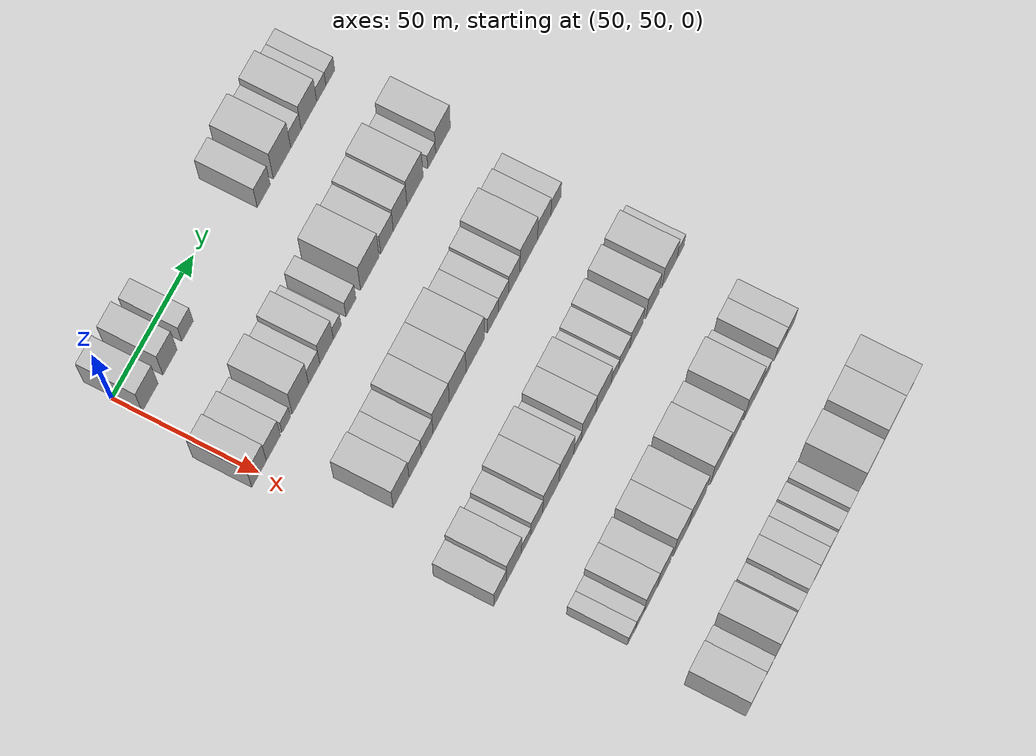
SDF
<sdf version="1.6">
 <world name="default">
  <model name="building_78">
   <static>1</static>
   <pose>50.0000 55.3659 0 0.000000 0.000000 0.000000</pose>
   <link name="link">
    <pose>0 0 10.50 0 0 0</pose>
    <collision name="collision"><geometry><box><size>20.0000 9.7498 21.0000</size></box></geometry></collision>
    <visual name="visual">
     <cast_shadows>0</cast_shadows>
     <geometry><box><size>20.0000 9.7498 21.0000</size></box></geometry>
     <material>
      <script>
       <uri>model://HANNAS_wall/materials/scripts</uri>
       <uri>model://HANNAS_wall/materials/textures</uri>
       <name>vrc/HANNAS_wall</name>
      </script>
     </material>
    </visual>
   </link>
  </model>
  <model name="building_79">
   <static>1</static>
   <pose>50.0000 67.6013 0 0.000000 0.000000 0.000000</pose>
   <link name="link">
    <pose>0 0 10.50 0 0 0</pose>
    <collision name="collision"><geometry><box><size>20.0000 8.7211 21.0000</size></box></geometry></collision>
    <visual name="visual">
     <cast_shadows>0</cast_shadows>
     <geometry><box><size>20.0000 8.7211 21.0000</size></box></geometry>
     <material>
      <script>
       <uri>model://HANNAS_wall/materials/scripts</uri>
       <uri>model://HANNAS_wall/materials/textures</uri>
       <name>vrc/HANNAS_wall</name>
      </script>
     </material>
    </visual>
   </link>
  </model>
  <model name="building_80">
   <static>1</static>
   <pose>50.0000 78.4694 0 0.000000 0.000000 0.000000</pose>
   <link name="link">
    <pose>0 0 7.50 0 0 0</pose>
    <collision name="collision"><geometry><box><size>20.0000 7.0151 15.0000</size></box></geometry></collision>
    <visual name="visual">
     <cast_shadows>0</cast_shadows>
     <geometry><box><size>20.0000 7.0151 15.0000</size></box></geometry>
     <material>
      <script>
       <uri>model://HANNAS_wall/materials/scripts</uri>
       <uri>model://HANNAS_wall/materials/textures</uri>
       <name>vrc/HANNAS_wall</name>
      </script>
     </material>
    </visual>
   </link>
  </model>
  <model name="building_81">
   <static>1</static>
   <pose>50.0000 126.3363 0 0.000000 0.000000 0.000000</pose>
   <link name="link">
    <pose>0 0 9.00 0 0 0</pose>
    <collision name="collision"><geometry><box><size>20.0000 8.2395 18.0000</size></box></geometry></collision>
    <visual name="visual">
     <cast_shadows>0</cast_shadows>
     <geometry><box><size>20.0000 8.2395 18.0000</size></box></geometry>
     <material>
      <script>
       <uri>model://HANNAS_wall/materials/scripts</uri>
       <uri>model://HANNAS_wall/materials/textures</uri>
       <name>vrc/HANNAS_wall</name>
      </script>
     </material>
    </visual>
   </link>
  </model>
  <model name="building_82">
   <static>1</static>
   <pose>50.0000 138.0064 0 0.000000 0.000000 0.000000</pose>
   <link name="link">
    <pose>0 0 12.00 0 0 0</pose>
    <collision name="collision"><geometry><box><size>20.0000 11.1007 24.0000</size></box></geometry></collision>
    <visual name="visual">
     <cast_shadows>0</cast_shadows>
     <geometry><box><size>20.0000 11.1007 24.0000</size></box></geometry>
     <material>
      <script>
       <uri>model://HANNAS_wall/materials/scripts</uri>
       <uri>model://HANNAS_wall/materials/textures</uri>
       <name>vrc/HANNAS_wall</name>
      </script>
     </material>
    </visual>
   </link>
  </model>
  <model name="building_83">
   <static>1</static>
   <pose>50.0000 146.9080 0 0.000000 0.000000 0.000000</pose>
   <link name="link">
    <pose>0 0 7.50 0 0 0</pose>
    <collision name="collision"><geometry><box><size>20.0000 6.7026 15.0000</size></box></geometry></collision>
    <visual name="visual">
     <cast_shadows>0</cast_shadows>
     <geometry><box><size>20.0000 6.7026 15.0000</size></box></geometry>
     <material>
      <script>
       <uri>model://HANNAS_wall/materials/scripts</uri>
       <uri>model://HANNAS_wall/materials/textures</uri>
       <name>vrc/HANNAS_wall</name>
      </script>
     </material>
    </visual>
   </link>
  </model>
  <model name="building_84">
   <static>1</static>
   <pose>50.0000 155.2489 0 0.000000 0.000000 0.000000</pose>
   <link name="link">
    <pose>0 0 10.50 0 0 0</pose>
    <collision name="collision"><geometry><box><size>20.0000 9.9791 21.0000</size></box></geometry></collision>
    <visual name="visual">
     <cast_shadows>0</cast_shadows>
     <geometry><box><size>20.0000 9.9791 21.0000</size></box></geometry>
     <material>
      <script>
       <uri>model://HANNAS_wall/materials/scripts</uri>
       <uri>model://HANNAS_wall/materials/textures</uri>
       <name>vrc/HANNAS_wall</name>
      </script>
     </material>
    </visual>
   </link>
  </model>
  <model name="building_85">
   <static>1</static>
   <pose>50.0000 163.1844 0 0.000000 0.000000 0.000000</pose>
   <link name="link">
    <pose>0 0 6.00 0 0 0</pose>
    <collision name="collision"><geometry><box><size>20.0000 5.8918 12.0000</size></box></geometry></collision>
    <visual name="visual">
     <cast_shadows>0</cast_shadows>
     <geometry><box><size>20.0000 5.8918 12.0000</size></box></geometry>
     <material>
      <script>
       <uri>model://HANNAS_wall/materials/scripts</uri>
       <uri>model://HANNAS_wall/materials/textures</uri>
       <name>vrc/HANNAS_wall</name>
      </script>
     </material>
    </visual>
   </link>
  </model>
  <model name="building_86">
   <static>1</static>
   <pose>50.0000 168.9830 0 0.000000 0.000000 0.000000</pose>
   <link name="link">
    <pose>0 0 6.00 0 0 0</pose>
    <collision name="collision"><geometry><box><size>20.0000 5.7054 12.0000</size></box></geometry></collision>
    <visual name="visual">
     <cast_shadows>0</cast_shadows>
     <geometry><box><size>20.0000 5.7054 12.0000</size></box></geometry>
     <material>
      <script>
       <uri>model://HANNAS_wall/materials/scripts</uri>
       <uri>model://HANNAS_wall/materials/textures</uri>
       <name>vrc/HANNAS_wall</name>
      </script>
     </material>
    </visual>
   </link>
  </model>
  <model name="building_205">
   <static>1</static>
   <pose>90.0000 49.7873 0 0.000000 0.000000 0.000000</pose>
   <link name="link">
    <pose>0 0 10.50 0 0 0</pose>
    <collision name="collision"><geometry><box><size>20.0000 9.0971 21.0000</size></box></geometry></collision>
    <visual name="visual">
     <cast_shadows>0</cast_shadows>
     <geometry><box><size>20.0000 9.0971 21.0000</size></box></geometry>
     <material>
      <script>
       <uri>model://HANNAS_wall/materials/scripts</uri>
       <uri>model://HANNAS_wall/materials/textures</uri>
       <name>vrc/HANNAS_wall</name>
      </script>
     </material>
    </visual>
   </link>
  </model>
  <model name="building_206">
   <static>1</static>
   <pose>90.0000 58.6942 0 0.000000 0.000000 0.000000</pose>
   <link name="link">
    <pose>0 0 9.00 0 0 0</pose>
    <collision name="collision"><geometry><box><size>20.0000 8.7167 18.0000</size></box></geometry></collision>
    <visual name="visual">
     <cast_shadows>0</cast_shadows>
     <geometry><box><size>20.0000 8.7167 18.0000</size></box></geometry>
     <material>
      <script>
       <uri>model://HANNAS_wall/materials/scripts</uri>
       <uri>model://HANNAS_wall/materials/textures</uri>
       <name>vrc/HANNAS_wall</name>
      </script>
     </material>
    </visual>
   </link>
  </model>
  <model name="building_207">
   <static>1</static>
   <pose>90.0000 66.7447 0 0.000000 0.000000 0.000000</pose>
   <link name="link">
    <pose>0 0 6.00 0 0 0</pose>
    <collision name="collision"><geometry><box><size>20.0000 5.3843 12.0000</size></box></geometry></collision>
    <visual name="visual">
     <cast_shadows>0</cast_shadows>
     <geometry><box><size>20.0000 5.3843 12.0000</size></box></geometry>
     <material>
      <script>
       <uri>model://HANNAS_wall/materials/scripts</uri>
       <uri>model://HANNAS_wall/materials/textures</uri>
       <name>vrc/HANNAS_wall</name>
      </script>
     </material>
    </visual>
   </link>
  </model>
  <model name="building_208">
   <static>1</static>
   <pose>90.0000 75.6059 0 0.000000 0.000000 0.000000</pose>
   <link name="link">
    <pose>0 0 12.00 0 0 0</pose>
    <collision name="collision"><geometry><box><size>20.0000 10.3382 24.0000</size></box></geometry></collision>
    <visual name="visual">
     <cast_shadows>0</cast_shadows>
     <geometry><box><size>20.0000 10.3382 24.0000</size></box></geometry>
     <material>
      <script>
       <uri>model://HANNAS_wall/materials/scripts</uri>
       <uri>model://HANNAS_wall/materials/textures</uri>
       <name>vrc/HANNAS_wall</name>
      </script>
     </material>
    </visual>
   </link>
  </model>
  <model name="building_209">
   <static>1</static>
   <pose>90.0000 84.2939 0 0.000000 0.000000 0.000000</pose>
   <link name="link">
    <pose>0 0 7.50 0 0 0</pose>
    <collision name="collision"><geometry><box><size>20.0000 7.0378 15.0000</size></box></geometry></collision>
    <visual name="visual">
     <cast_shadows>0</cast_shadows>
     <geometry><box><size>20.0000 7.0378 15.0000</size></box></geometry>
     <material>
      <script>
       <uri>model://HANNAS_wall/materials/scripts</uri>
       <uri>model://HANNAS_wall/materials/textures</uri>
       <name>vrc/HANNAS_wall</name>
      </script>
     </material>
    </visual>
   </link>
  </model>
  <model name="building_210">
   <static>1</static>
   <pose>90.0000 92.0998 0 0.000000 0.000000 0.000000</pose>
   <link name="link">
    <pose>0 0 10.50 0 0 0</pose>
    <collision name="collision"><geometry><box><size>20.0000 8.5739 21.0000</size></box></geometry></collision>
    <visual name="visual">
     <cast_shadows>0</cast_shadows>
     <geometry><box><size>20.0000 8.5739 21.0000</size></box></geometry>
     <material>
      <script>
       <uri>model://HANNAS_wall/materials/scripts</uri>
       <uri>model://HANNAS_wall/materials/textures</uri>
       <name>vrc/HANNAS_wall</name>
      </script>
     </material>
    </visual>
   </link>
  </model>
  <model name="building_211">
   <static>1</static>
   <pose>90.0000 98.8575 0 0.000000 0.000000 0.000000</pose>
   <link name="link">
    <pose>0 0 6.00 0 0 0</pose>
    <collision name="collision"><geometry><box><size>20.0000 4.9415 12.0000</size></box></geometry></collision>
    <visual name="visual">
     <cast_shadows>0</cast_shadows>
     <geometry><box><size>20.0000 4.9415 12.0000</size></box></geometry>
     <material>
      <script>
       <uri>model://HANNAS_wall/materials/scripts</uri>
       <uri>model://HANNAS_wall/materials/textures</uri>
       <name>vrc/HANNAS_wall</name>
      </script>
     </material>
    </visual>
   </link>
  </model>
  <model name="building_212">
   <static>1</static>
   <pose>90.0000 107.4986 0 0.000000 0.000000 0.000000</pose>
   <link name="link">
    <pose>0 0 7.50 0 0 0</pose>
    <collision name="collision"><geometry><box><size>20.0000 6.3408 15.0000</size></box></geometry></collision>
    <visual name="visual">
     <cast_shadows>0</cast_shadows>
     <geometry><box><size>20.0000 6.3408 15.0000</size></box></geometry>
     <material>
      <script>
       <uri>model://HANNAS_wall/materials/scripts</uri>
       <uri>model://HANNAS_wall/materials/textures</uri>
       <name>vrc/HANNAS_wall</name>
      </script>
     </material>
    </visual>
   </link>
  </model>
  <model name="building_213">
   <static>1</static>
   <pose>90.0000 119.5942 0 0.000000 0.000000 0.000000</pose>
   <link name="link">
    <pose>0 0 12.00 0 0 0</pose>
    <collision name="collision"><geometry><box><size>20.0000 11.8504 24.0000</size></box></geometry></collision>
    <visual name="visual">
     <cast_shadows>0</cast_shadows>
     <geometry><box><size>20.0000 11.8504 24.0000</size></box></geometry>
     <material>
      <script>
       <uri>model://HANNAS_wall/materials/scripts</uri>
       <uri>model://HANNAS_wall/materials/textures</uri>
       <name>vrc/HANNAS_wall</name>
      </script>
     </material>
    </visual>
   </link>
  </model>
  <model name="building_214">
   <static>1</static>
   <pose>90.0000 130.5857 0 0.000000 0.000000 0.000000</pose>
   <link name="link">
    <pose>0 0 9.00 0 0 0</pose>
    <collision name="collision"><geometry><box><size>20.0000 8.1325 18.0000</size></box></geometry></collision>
    <visual name="visual">
     <cast_shadows>0</cast_shadows>
     <geometry><box><size>20.0000 8.1325 18.0000</size></box></geometry>
     <material>
      <script>
       <uri>model://HANNAS_wall/materials/scripts</uri>
       <uri>model://HANNAS_wall/materials/textures</uri>
       <name>vrc/HANNAS_wall</name>
      </script>
     </material>
    </visual>
   </link>
  </model>
  <model name="building_215">
   <static>1</static>
   <pose>90.0000 139.0919 0 0.000000 0.000000 0.000000</pose>
   <link name="link">
    <pose>0 0 10.50 0 0 0</pose>
    <collision name="collision"><geometry><box><size>20.0000 8.8800 21.0000</size></box></geometry></collision>
    <visual name="visual">
     <cast_shadows>0</cast_shadows>
     <geometry><box><size>20.0000 8.8800 21.0000</size></box></geometry>
     <material>
      <script>
       <uri>model://HANNAS_wall/materials/scripts</uri>
       <uri>model://HANNAS_wall/materials/textures</uri>
       <name>vrc/HANNAS_wall</name>
      </script>
     </material>
    </visual>
   </link>
  </model>
  <model name="building_216">
   <static>1</static>
   <pose>90.0000 148.7442 0 0.000000 0.000000 0.000000</pose>
   <link name="link">
    <pose>0 0 12.00 0 0 0</pose>
    <collision name="collision"><geometry><box><size>20.0000 10.4246 24.0000</size></box></geometry></collision>
    <visual name="visual">
     <cast_shadows>0</cast_shadows>
     <geometry><box><size>20.0000 10.4246 24.0000</size></box></geometry>
     <material>
      <script>
       <uri>model://HANNAS_wall/materials/scripts</uri>
       <uri>model://HANNAS_wall/materials/textures</uri>
       <name>vrc/HANNAS_wall</name>
      </script>
     </material>
    </visual>
   </link>
  </model>
  <model name="building_217">
   <static>1</static>
   <pose>90.0000 159.5281 0 0.000000 0.000000 0.000000</pose>
   <link name="link">
    <pose>0 0 6.00 0 0 0</pose>
    <collision name="collision"><geometry><box><size>20.0000 5.1431 12.0000</size></box></geometry></collision>
    <visual name="visual">
     <cast_shadows>0</cast_shadows>
     <geometry><box><size>20.0000 5.1431 12.0000</size></box></geometry>
     <material>
      <script>
       <uri>model://HANNAS_wall/materials/scripts</uri>
       <uri>model://HANNAS_wall/materials/textures</uri>
       <name>vrc/HANNAS_wall</name>
      </script>
     </material>
    </visual>
   </link>
  </model>
  <model name="building_218">
   <static>1</static>
   <pose>90.0000 166.9078 0 0.000000 0.000000 0.000000</pose>
   <link name="link">
    <pose>0 0 10.50 0 0 0</pose>
    <collision name="collision"><geometry><box><size>20.0000 9.6163 21.0000</size></box></geometry></collision>
    <visual name="visual">
     <cast_shadows>0</cast_shadows>
     <geometry><box><size>20.0000 9.6163 21.0000</size></box></geometry>
     <material>
      <script>
       <uri>model://HANNAS_wall/materials/scripts</uri>
       <uri>model://HANNAS_wall/materials/textures</uri>
       <name>vrc/HANNAS_wall</name>
      </script>
     </material>
    </visual>
   </link>
  </model>
  <model name="building_337">
   <static>1</static>
   <pose>130.0000 64.1226 0 0.000000 0.000000 0.000000</pose>
   <link name="link">
    <pose>0 0 10.50 0 0 0</pose>
    <collision name="collision"><geometry><box><size>20.0000 10.1114 21.0000</size></box></geometry></collision>
    <visual name="visual">
     <cast_shadows>0</cast_shadows>
     <geometry><box><size>20.0000 10.1114 21.0000</size></box></geometry>
     <material>
      <script>
       <uri>model://HANNAS_wall/materials/scripts</uri>
       <uri>model://HANNAS_wall/materials/textures</uri>
       <name>vrc/HANNAS_wall</name>
      </script>
     </material>
    </visual>
   </link>
  </model>
  <model name="building_338">
   <static>1</static>
   <pose>130.0000 73.0999 0 0.000000 0.000000 0.000000</pose>
   <link name="link">
    <pose>0 0 9.00 0 0 0</pose>
    <collision name="collision"><geometry><box><size>20.0000 7.8432 18.0000</size></box></geometry></collision>
    <visual name="visual">
     <cast_shadows>0</cast_shadows>
     <geometry><box><size>20.0000 7.8432 18.0000</size></box></geometry>
     <material>
      <script>
       <uri>model://HANNAS_wall/materials/scripts</uri>
       <uri>model://HANNAS_wall/materials/textures</uri>
       <name>vrc/HANNAS_wall</name>
      </script>
     </material>
    </visual>
   </link>
  </model>
  <model name="building_339">
   <static>1</static>
   <pose>130.0000 80.7239 0 0.000000 0.000000 0.000000</pose>
   <link name="link">
    <pose>0 0 9.00 0 0 0</pose>
    <collision name="collision"><geometry><box><size>20.0000 7.4048 18.0000</size></box></geometry></collision>
    <visual name="visual">
     <cast_shadows>0</cast_shadows>
     <geometry><box><size>20.0000 7.4048 18.0000</size></box></geometry>
     <material>
      <script>
       <uri>model://HANNAS_wall/materials/scripts</uri>
       <uri>model://HANNAS_wall/materials/textures</uri>
       <name>vrc/HANNAS_wall</name>
      </script>
     </material>
    </visual>
   </link>
  </model>
  <model name="building_340">
   <static>1</static>
   <pose>130.0000 89.6452 0 0.000000 0.000000 0.000000</pose>
   <link name="link">
    <pose>0 0 12.00 0 0 0</pose>
    <collision name="collision"><geometry><box><size>20.0000 10.4376 24.0000</size></box></geometry></collision>
    <visual name="visual">
     <cast_shadows>0</cast_shadows>
     <geometry><box><size>20.0000 10.4376 24.0000</size></box></geometry>
     <material>
      <script>
       <uri>model://HANNAS_wall/materials/scripts</uri>
       <uri>model://HANNAS_wall/materials/textures</uri>
       <name>vrc/HANNAS_wall</name>
      </script>
     </material>
    </visual>
   </link>
  </model>
  <model name="building_341">
   <static>1</static>
   <pose>130.0000 100.2079 0 0.000000 0.000000 0.000000</pose>
   <link name="link">
    <pose>0 0 12.00 0 0 0</pose>
    <collision name="collision"><geometry><box><size>20.0000 10.6879 24.0000</size></box></geometry></collision>
    <visual name="visual">
     <cast_shadows>0</cast_shadows>
     <geometry><box><size>20.0000 10.6879 24.0000</size></box></geometry>
     <material>
      <script>
       <uri>model://HANNAS_wall/materials/scripts</uri>
       <uri>model://HANNAS_wall/materials/textures</uri>
       <name>vrc/HANNAS_wall</name>
      </script>
     </material>
    </visual>
   </link>
  </model>
  <model name="building_342">
   <static>1</static>
   <pose>130.0000 111.5084 0 0.000000 0.000000 0.000000</pose>
   <link name="link">
    <pose>0 0 12.00 0 0 0</pose>
    <collision name="collision"><geometry><box><size>20.0000 11.9130 24.0000</size></box></geometry></collision>
    <visual name="visual">
     <cast_shadows>0</cast_shadows>
     <geometry><box><size>20.0000 11.9130 24.0000</size></box></geometry>
     <material>
      <script>
       <uri>model://HANNAS_wall/materials/scripts</uri>
       <uri>model://HANNAS_wall/materials/textures</uri>
       <name>vrc/HANNAS_wall</name>
      </script>
     </material>
    </visual>
   </link>
  </model>
  <model name="building_343">
   <static>1</static>
   <pose>130.0000 123.0805 0 0.000000 0.000000 0.000000</pose>
   <link name="link">
    <pose>0 0 7.50 0 0 0</pose>
    <collision name="collision"><geometry><box><size>20.0000 7.2312 15.0000</size></box></geometry></collision>
    <visual name="visual">
     <cast_shadows>0</cast_shadows>
     <geometry><box><size>20.0000 7.2312 15.0000</size></box></geometry>
     <material>
      <script>
       <uri>model://HANNAS_wall/materials/scripts</uri>
       <uri>model://HANNAS_wall/materials/textures</uri>
       <name>vrc/HANNAS_wall</name>
      </script>
     </material>
    </visual>
   </link>
  </model>
  <model name="building_344">
   <static>1</static>
   <pose>130.0000 129.9918 0 0.000000 0.000000 0.000000</pose>
   <link name="link">
    <pose>0 0 7.50 0 0 0</pose>
    <collision name="collision"><geometry><box><size>20.0000 6.5915 15.0000</size></box></geometry></collision>
    <visual name="visual">
     <cast_shadows>0</cast_shadows>
     <geometry><box><size>20.0000 6.5915 15.0000</size></box></geometry>
     <material>
      <script>
       <uri>model://HANNAS_wall/materials/scripts</uri>
       <uri>model://HANNAS_wall/materials/textures</uri>
       <name>vrc/HANNAS_wall</name>
      </script>
     </material>
    </visual>
   </link>
  </model>
  <model name="building_345">
   <static>1</static>
   <pose>130.0000 136.9057 0 0.000000 0.000000 0.000000</pose>
   <link name="link">
    <pose>0 0 9.00 0 0 0</pose>
    <collision name="collision"><geometry><box><size>20.0000 7.2363 18.0000</size></box></geometry></collision>
    <visual name="visual">
     <cast_shadows>0</cast_shadows>
     <geometry><box><size>20.0000 7.2363 18.0000</size></box></geometry>
     <material>
      <script>
       <uri>model://HANNAS_wall/materials/scripts</uri>
       <uri>model://HANNAS_wall/materials/textures</uri>
       <name>vrc/HANNAS_wall</name>
      </script>
     </material>
    </visual>
   </link>
  </model>
  <model name="building_346">
   <static>1</static>
   <pose>130.0000 146.2920 0 0.000000 0.000000 0.000000</pose>
   <link name="link">
    <pose>0 0 12.00 0 0 0</pose>
    <collision name="collision"><geometry><box><size>20.0000 11.5364 24.0000</size></box></geometry></collision>
    <visual name="visual">
     <cast_shadows>0</cast_shadows>
     <geometry><box><size>20.0000 11.5364 24.0000</size></box></geometry>
     <material>
      <script>
       <uri>model://HANNAS_wall/materials/scripts</uri>
       <uri>model://HANNAS_wall/materials/textures</uri>
       <name>vrc/HANNAS_wall</name>
      </script>
     </material>
    </visual>
   </link>
  </model>
  <model name="building_347">
   <static>1</static>
   <pose>130.0000 156.4821 0 0.000000 0.000000 0.000000</pose>
   <link name="link">
    <pose>0 0 9.00 0 0 0</pose>
    <collision name="collision"><geometry><box><size>20.0000 8.8437 18.0000</size></box></geometry></collision>
    <visual name="visual">
     <cast_shadows>0</cast_shadows>
     <geometry><box><size>20.0000 8.8437 18.0000</size></box></geometry>
     <material>
      <script>
       <uri>model://HANNAS_wall/materials/scripts</uri>
       <uri>model://HANNAS_wall/materials/textures</uri>
       <name>vrc/HANNAS_wall</name>
      </script>
     </material>
    </visual>
   </link>
  </model>
  <model name="building_348">
   <static>1</static>
   <pose>130.0000 164.1831 0 0.000000 0.000000 0.000000</pose>
   <link name="link">
    <pose>0 0 7.50 0 0 0</pose>
    <collision name="collision"><geometry><box><size>20.0000 6.5584 15.0000</size></box></geometry></collision>
    <visual name="visual">
     <cast_shadows>0</cast_shadows>
     <geometry><box><size>20.0000 6.5584 15.0000</size></box></geometry>
     <material>
      <script>
       <uri>model://HANNAS_wall/materials/scripts</uri>
       <uri>model://HANNAS_wall/materials/textures</uri>
       <name>vrc/HANNAS_wall</name>
      </script>
     </material>
    </visual>
   </link>
  </model>
  <model name="building_471">
   <static>1</static>
   <pose>170.0000 50.5690 0 0.000000 0.000000 0.000000</pose>
   <link name="link">
    <pose>0 0 9.00 0 0 0</pose>
    <collision name="collision"><geometry><box><size>20.0000 8.0127 18.0000</size></box></geometry></collision>
    <visual name="visual">
     <cast_shadows>0</cast_shadows>
     <geometry><box><size>20.0000 8.0127 18.0000</size></box></geometry>
     <material>
      <script>
       <uri>model://HANNAS_wall/materials/scripts</uri>
       <uri>model://HANNAS_wall/materials/textures</uri>
       <name>vrc/HANNAS_wall</name>
      </script>
     </material>
    </visual>
   </link>
  </model>
  <model name="building_472">
   <static>1</static>
   <pose>170.0000 59.3839 0 0.000000 0.000000 0.000000</pose>
   <link name="link">
    <pose>0 0 12.00 0 0 0</pose>
    <collision name="collision"><geometry><box><size>20.0000 9.6172 24.0000</size></box></geometry></collision>
    <visual name="visual">
     <cast_shadows>0</cast_shadows>
     <geometry><box><size>20.0000 9.6172 24.0000</size></box></geometry>
     <material>
      <script>
       <uri>model://HANNAS_wall/materials/scripts</uri>
       <uri>model://HANNAS_wall/materials/textures</uri>
       <name>vrc/HANNAS_wall</name>
      </script>
     </material>
    </visual>
   </link>
  </model>
  <model name="building_473">
   <static>1</static>
   <pose>170.0000 67.1862 0 0.000000 0.000000 0.000000</pose>
   <link name="link">
    <pose>0 0 6.00 0 0 0</pose>
    <collision name="collision"><geometry><box><size>20.0000 5.9874 12.0000</size></box></geometry></collision>
    <visual name="visual">
     <cast_shadows>0</cast_shadows>
     <geometry><box><size>20.0000 5.9874 12.0000</size></box></geometry>
     <material>
      <script>
       <uri>model://HANNAS_wall/materials/scripts</uri>
       <uri>model://HANNAS_wall/materials/textures</uri>
       <name>vrc/HANNAS_wall</name>
      </script>
     </material>
    </visual>
   </link>
  </model>
  <model name="building_474">
   <static>1</static>
   <pose>170.0000 74.0247 0 0.000000 0.000000 0.000000</pose>
   <link name="link">
    <pose>0 0 9.00 0 0 0</pose>
    <collision name="collision"><geometry><box><size>20.0000 7.6896 18.0000</size></box></geometry></collision>
    <visual name="visual">
     <cast_shadows>0</cast_shadows>
     <geometry><box><size>20.0000 7.6896 18.0000</size></box></geometry>
     <material>
      <script>
       <uri>model://HANNAS_wall/materials/scripts</uri>
       <uri>model://HANNAS_wall/materials/textures</uri>
       <name>vrc/HANNAS_wall</name>
      </script>
     </material>
    </visual>
   </link>
  </model>
  <model name="building_475">
   <static>1</static>
   <pose>170.0000 83.0928 0 0.000000 0.000000 0.000000</pose>
   <link name="link">
    <pose>0 0 12.00 0 0 0</pose>
    <collision name="collision"><geometry><box><size>20.0000 10.4467 24.0000</size></box></geometry></collision>
    <visual name="visual">
     <cast_shadows>0</cast_shadows>
     <geometry><box><size>20.0000 10.4467 24.0000</size></box></geometry>
     <material>
      <script>
       <uri>model://HANNAS_wall/materials/scripts</uri>
       <uri>model://HANNAS_wall/materials/textures</uri>
       <name>vrc/HANNAS_wall</name>
      </script>
     </material>
    </visual>
   </link>
  </model>
  <model name="building_476">
   <static>1</static>
   <pose>170.0000 93.1195 0 0.000000 0.000000 0.000000</pose>
   <link name="link">
    <pose>0 0 12.00 0 0 0</pose>
    <collision name="collision"><geometry><box><size>20.0000 9.6065 24.0000</size></box></geometry></collision>
    <visual name="visual">
     <cast_shadows>0</cast_shadows>
     <geometry><box><size>20.0000 9.6065 24.0000</size></box></geometry>
     <material>
      <script>
       <uri>model://HANNAS_wall/materials/scripts</uri>
       <uri>model://HANNAS_wall/materials/textures</uri>
       <name>vrc/HANNAS_wall</name>
      </script>
     </material>
    </visual>
   </link>
  </model>
  <model name="building_477">
   <static>1</static>
   <pose>170.0000 100.3997 0 0.000000 0.000000 0.000000</pose>
   <link name="link">
    <pose>0 0 6.00 0 0 0</pose>
    <collision name="collision"><geometry><box><size>20.0000 4.9540 12.0000</size></box></geometry></collision>
    <visual name="visual">
     <cast_shadows>0</cast_shadows>
     <geometry><box><size>20.0000 4.9540 12.0000</size></box></geometry>
     <material>
      <script>
       <uri>model://HANNAS_wall/materials/scripts</uri>
       <uri>model://HANNAS_wall/materials/textures</uri>
       <name>vrc/HANNAS_wall</name>
      </script>
     </material>
    </visual>
   </link>
  </model>
  <model name="building_478">
   <static>1</static>
   <pose>170.0000 107.6061 0 0.000000 0.000000 0.000000</pose>
   <link name="link">
    <pose>0 0 10.50 0 0 0</pose>
    <collision name="collision"><geometry><box><size>20.0000 9.4587 21.0000</size></box></geometry></collision>
    <visual name="visual">
     <cast_shadows>0</cast_shadows>
     <geometry><box><size>20.0000 9.4587 21.0000</size></box></geometry>
     <material>
      <script>
       <uri>model://HANNAS_wall/materials/scripts</uri>
       <uri>model://HANNAS_wall/materials/textures</uri>
       <name>vrc/HANNAS_wall</name>
      </script>
     </material>
    </visual>
   </link>
  </model>
  <model name="building_479">
   <static>1</static>
   <pose>170.0000 117.3279 0 0.000000 0.000000 0.000000</pose>
   <link name="link">
    <pose>0 0 10.50 0 0 0</pose>
    <collision name="collision"><geometry><box><size>20.0000 9.9848 21.0000</size></box></geometry></collision>
    <visual name="visual">
     <cast_shadows>0</cast_shadows>
     <geometry><box><size>20.0000 9.9848 21.0000</size></box></geometry>
     <material>
      <script>
       <uri>model://HANNAS_wall/materials/scripts</uri>
       <uri>model://HANNAS_wall/materials/textures</uri>
       <name>vrc/HANNAS_wall</name>
      </script>
     </material>
    </visual>
   </link>
  </model>
  <model name="building_480">
   <static>1</static>
   <pose>170.0000 124.7977 0 0.000000 0.000000 0.000000</pose>
   <link name="link">
    <pose>0 0 6.00 0 0 0</pose>
    <collision name="collision"><geometry><box><size>20.0000 4.9548 12.0000</size></box></geometry></collision>
    <visual name="visual">
     <cast_shadows>0</cast_shadows>
     <geometry><box><size>20.0000 4.9548 12.0000</size></box></geometry>
     <material>
      <script>
       <uri>model://HANNAS_wall/materials/scripts</uri>
       <uri>model://HANNAS_wall/materials/textures</uri>
       <name>vrc/HANNAS_wall</name>
      </script>
     </material>
    </visual>
   </link>
  </model>
  <model name="building_481">
   <static>1</static>
   <pose>170.0000 130.9583 0 0.000000 0.000000 0.000000</pose>
   <link name="link">
    <pose>0 0 7.50 0 0 0</pose>
    <collision name="collision"><geometry><box><size>20.0000 7.3665 15.0000</size></box></geometry></collision>
    <visual name="visual">
     <cast_shadows>0</cast_shadows>
     <geometry><box><size>20.0000 7.3665 15.0000</size></box></geometry>
     <material>
      <script>
       <uri>model://HANNAS_wall/materials/scripts</uri>
       <uri>model://HANNAS_wall/materials/textures</uri>
       <name>vrc/HANNAS_wall</name>
      </script>
     </material>
    </visual>
   </link>
  </model>
  <model name="building_482">
   <static>1</static>
   <pose>170.0000 139.0006 0 0.000000 0.000000 0.000000</pose>
   <link name="link">
    <pose>0 0 9.00 0 0 0</pose>
    <collision name="collision"><geometry><box><size>20.0000 8.7182 18.0000</size></box></geometry></collision>
    <visual name="visual">
     <cast_shadows>0</cast_shadows>
     <geometry><box><size>20.0000 8.7182 18.0000</size></box></geometry>
     <material>
      <script>
       <uri>model://HANNAS_wall/materials/scripts</uri>
       <uri>model://HANNAS_wall/materials/textures</uri>
       <name>vrc/HANNAS_wall</name>
      </script>
     </material>
    </visual>
   </link>
  </model>
  <model name="building_483">
   <static>1</static>
   <pose>170.0000 149.7562 0 0.000000 0.000000 0.000000</pose>
   <link name="link">
    <pose>0 0 10.50 0 0 0</pose>
    <collision name="collision"><geometry><box><size>20.0000 8.7931 21.0000</size></box></geometry></collision>
    <visual name="visual">
     <cast_shadows>0</cast_shadows>
     <geometry><box><size>20.0000 8.7931 21.0000</size></box></geometry>
     <material>
      <script>
       <uri>model://HANNAS_wall/materials/scripts</uri>
       <uri>model://HANNAS_wall/materials/textures</uri>
       <name>vrc/HANNAS_wall</name>
      </script>
     </material>
    </visual>
   </link>
  </model>
  <model name="building_484">
   <static>1</static>
   <pose>170.0000 161.1289 0 0.000000 0.000000 0.000000</pose>
   <link name="link">
    <pose>0 0 10.50 0 0 0</pose>
    <collision name="collision"><geometry><box><size>20.0000 9.9522 21.0000</size></box></geometry></collision>
    <visual name="visual">
     <cast_shadows>0</cast_shadows>
     <geometry><box><size>20.0000 9.9522 21.0000</size></box></geometry>
     <material>
      <script>
       <uri>model://HANNAS_wall/materials/scripts</uri>
       <uri>model://HANNAS_wall/materials/textures</uri>
       <name>vrc/HANNAS_wall</name>
      </script>
     </material>
    </visual>
   </link>
  </model>
  <model name="building_485">
   <static>1</static>
   <pose>170.0000 168.5061 0 0.000000 0.000000 0.000000</pose>
   <link name="link">
    <pose>0 0 6.00 0 0 0</pose>
    <collision name="collision"><geometry><box><size>20.0000 4.8022 12.0000</size></box></geometry></collision>
    <visual name="visual">
     <cast_shadows>0</cast_shadows>
     <geometry><box><size>20.0000 4.8022 12.0000</size></box></geometry>
     <material>
      <script>
       <uri>model://HANNAS_wall/materials/scripts</uri>
       <uri>model://HANNAS_wall/materials/textures</uri>
       <name>vrc/HANNAS_wall</name>
      </script>
     </material>
    </visual>
   </link>
  </model>
  <model name="building_617">
   <static>1</static>
   <pose>210.0000 57.0059 0 0.000000 0.000000 0.000000</pose>
   <link name="link">
    <pose>0 0 6.00 0 0 0</pose>
    <collision name="collision"><geometry><box><size>20.0000 5.2710 12.0000</size></box></geometry></collision>
    <visual name="visual">
     <cast_shadows>0</cast_shadows>
     <geometry><box><size>20.0000 5.2710 12.0000</size></box></geometry>
     <material>
      <script>
       <uri>model://HANNAS_wall/materials/scripts</uri>
       <uri>model://HANNAS_wall/materials/textures</uri>
       <name>vrc/HANNAS_wall</name>
      </script>
     </material>
    </visual>
   </link>
  </model>
  <model name="building_618">
   <static>1</static>
   <pose>210.0000 62.2976 0 0.000000 0.000000 0.000000</pose>
   <link name="link">
    <pose>0 0 6.00 0 0 0</pose>
    <collision name="collision"><geometry><box><size>20.0000 5.3125 12.0000</size></box></geometry></collision>
    <visual name="visual">
     <cast_shadows>0</cast_shadows>
     <geometry><box><size>20.0000 5.3125 12.0000</size></box></geometry>
     <material>
      <script>
       <uri>model://HANNAS_wall/materials/scripts</uri>
       <uri>model://HANNAS_wall/materials/textures</uri>
       <name>vrc/HANNAS_wall</name>
      </script>
     </material>
    </visual>
   </link>
  </model>
  <model name="building_619">
   <static>1</static>
   <pose>210.0000 69.3607 0 0.000000 0.000000 0.000000</pose>
   <link name="link">
    <pose>0 0 10.50 0 0 0</pose>
    <collision name="collision"><geometry><box><size>20.0000 8.8137 21.0000</size></box></geometry></collision>
    <visual name="visual">
     <cast_shadows>0</cast_shadows>
     <geometry><box><size>20.0000 8.8137 21.0000</size></box></geometry>
     <material>
      <script>
       <uri>model://HANNAS_wall/materials/scripts</uri>
       <uri>model://HANNAS_wall/materials/textures</uri>
       <name>vrc/HANNAS_wall</name>
      </script>
     </material>
    </visual>
   </link>
  </model>
  <model name="building_620">
   <static>1</static>
   <pose>210.0000 78.0146 0 0.000000 0.000000 0.000000</pose>
   <link name="link">
    <pose>0 0 10.50 0 0 0</pose>
    <collision name="collision"><geometry><box><size>20.0000 8.4940 21.0000</size></box></geometry></collision>
    <visual name="visual">
     <cast_shadows>0</cast_shadows>
     <geometry><box><size>20.0000 8.4940 21.0000</size></box></geometry>
     <material>
      <script>
       <uri>model://HANNAS_wall/materials/scripts</uri>
       <uri>model://HANNAS_wall/materials/textures</uri>
       <name>vrc/HANNAS_wall</name>
      </script>
     </material>
    </visual>
   </link>
  </model>
  <model name="building_621">
   <static>1</static>
   <pose>210.0000 89.1510 0 0.000000 0.000000 0.000000</pose>
   <link name="link">
    <pose>0 0 12.00 0 0 0</pose>
    <collision name="collision"><geometry><box><size>20.0000 9.7788 24.0000</size></box></geometry></collision>
    <visual name="visual">
     <cast_shadows>0</cast_shadows>
     <geometry><box><size>20.0000 9.7788 24.0000</size></box></geometry>
     <material>
      <script>
       <uri>model://HANNAS_wall/materials/scripts</uri>
       <uri>model://HANNAS_wall/materials/textures</uri>
       <name>vrc/HANNAS_wall</name>
      </script>
     </material>
    </visual>
   </link>
  </model>
  <model name="building_622">
   <static>1</static>
   <pose>210.0000 99.7330 0 0.000000 0.000000 0.000000</pose>
   <link name="link">
    <pose>0 0 12.00 0 0 0</pose>
    <collision name="collision"><geometry><box><size>20.0000 11.3852 24.0000</size></box></geometry></collision>
    <visual name="visual">
     <cast_shadows>0</cast_shadows>
     <geometry><box><size>20.0000 11.3852 24.0000</size></box></geometry>
     <material>
      <script>
       <uri>model://HANNAS_wall/materials/scripts</uri>
       <uri>model://HANNAS_wall/materials/textures</uri>
       <name>vrc/HANNAS_wall</name>
      </script>
     </material>
    </visual>
   </link>
  </model>
  <model name="building_623">
   <static>1</static>
   <pose>210.0000 114.2131 0 0.000000 0.000000 0.000000</pose>
   <link name="link">
    <pose>0 0 12.00 0 0 0</pose>
    <collision name="collision"><geometry><box><size>20.0000 11.5749 24.0000</size></box></geometry></collision>
    <visual name="visual">
     <cast_shadows>0</cast_shadows>
     <geometry><box><size>20.0000 11.5749 24.0000</size></box></geometry>
     <material>
      <script>
       <uri>model://HANNAS_wall/materials/scripts</uri>
       <uri>model://HANNAS_wall/materials/textures</uri>
       <name>vrc/HANNAS_wall</name>
      </script>
     </material>
    </visual>
   </link>
  </model>
  <model name="building_624">
   <static>1</static>
   <pose>210.0000 124.4322 0 0.000000 0.000000 0.000000</pose>
   <link name="link">
    <pose>0 0 9.00 0 0 0</pose>
    <collision name="collision"><geometry><box><size>20.0000 8.8633 18.0000</size></box></geometry></collision>
    <visual name="visual">
     <cast_shadows>0</cast_shadows>
     <geometry><box><size>20.0000 8.8633 18.0000</size></box></geometry>
     <material>
      <script>
       <uri>model://HANNAS_wall/materials/scripts</uri>
       <uri>model://HANNAS_wall/materials/textures</uri>
       <name>vrc/HANNAS_wall</name>
      </script>
     </material>
    </visual>
   </link>
  </model>
  <model name="building_625">
   <static>1</static>
   <pose>210.0000 136.5696 0 0.000000 0.000000 0.000000</pose>
   <link name="link">
    <pose>0 0 12.00 0 0 0</pose>
    <collision name="collision"><geometry><box><size>20.0000 11.4115 24.0000</size></box></geometry></collision>
    <visual name="visual">
     <cast_shadows>0</cast_shadows>
     <geometry><box><size>20.0000 11.4115 24.0000</size></box></geometry>
     <material>
      <script>
       <uri>model://HANNAS_wall/materials/scripts</uri>
       <uri>model://HANNAS_wall/materials/textures</uri>
       <name>vrc/HANNAS_wall</name>
      </script>
     </material>
    </visual>
   </link>
  </model>
  <model name="building_626">
   <static>1</static>
   <pose>210.0000 145.2687 0 0.000000 0.000000 0.000000</pose>
   <link name="link">
    <pose>0 0 6.00 0 0 0</pose>
    <collision name="collision"><geometry><box><size>20.0000 5.9868 12.0000</size></box></geometry></collision>
    <visual name="visual">
     <cast_shadows>0</cast_shadows>
     <geometry><box><size>20.0000 5.9868 12.0000</size></box></geometry>
     <material>
      <script>
       <uri>model://HANNAS_wall/materials/scripts</uri>
       <uri>model://HANNAS_wall/materials/textures</uri>
       <name>vrc/HANNAS_wall</name>
      </script>
     </material>
    </visual>
   </link>
  </model>
  <model name="building_627">
   <static>1</static>
   <pose>210.0000 154.8159 0 0.000000 0.000000 0.000000</pose>
   <link name="link">
    <pose>0 0 7.50 0 0 0</pose>
    <collision name="collision"><geometry><box><size>20.0000 7.1075 15.0000</size></box></geometry></collision>
    <visual name="visual">
     <cast_shadows>0</cast_shadows>
     <geometry><box><size>20.0000 7.1075 15.0000</size></box></geometry>
     <material>
      <script>
       <uri>model://HANNAS_wall/materials/scripts</uri>
       <uri>model://HANNAS_wall/materials/textures</uri>
       <name>vrc/HANNAS_wall</name>
      </script>
     </material>
    </visual>
   </link>
  </model>
  <model name="building_628">
   <static>1</static>
   <pose>210.0000 161.6594 0 0.000000 0.000000 0.000000</pose>
   <link name="link">
    <pose>0 0 7.50 0 0 0</pose>
    <collision name="collision"><geometry><box><size>20.0000 6.5796 15.0000</size></box></geometry></collision>
    <visual name="visual">
     <cast_shadows>0</cast_shadows>
     <geometry><box><size>20.0000 6.5796 15.0000</size></box></geometry>
     <material>
      <script>
       <uri>model://HANNAS_wall/materials/scripts</uri>
       <uri>model://HANNAS_wall/materials/textures</uri>
       <name>vrc/HANNAS_wall</name>
      </script>
     </material>
    </visual>
   </link>
  </model>
  <model name="building_750">
   <static>1</static>
   <pose>250.0000 56.7096 0 0.000000 0.000000 0.000000</pose>
   <link name="link">
    <pose>0 0 12.00 0 0 0</pose>
    <collision name="collision"><geometry><box><size>20.0000 10.0866 24.0000</size></box></geometry></collision>
    <visual name="visual">
     <cast_shadows>0</cast_shadows>
     <geometry><box><size>20.0000 10.0866 24.0000</size></box></geometry>
     <material>
      <script>
       <uri>model://HANNAS_wall/materials/scripts</uri>
       <uri>model://HANNAS_wall/materials/textures</uri>
       <name>vrc/HANNAS_wall</name>
      </script>
     </material>
    </visual>
   </link>
  </model>
  <model name="building_751">
   <static>1</static>
   <pose>250.0000 65.1934 0 0.000000 0.000000 0.000000</pose>
   <link name="link">
    <pose>0 0 7.50 0 0 0</pose>
    <collision name="collision"><geometry><box><size>20.0000 6.8810 15.0000</size></box></geometry></collision>
    <visual name="visual">
     <cast_shadows>0</cast_shadows>
     <geometry><box><size>20.0000 6.8810 15.0000</size></box></geometry>
     <material>
      <script>
       <uri>model://HANNAS_wall/materials/scripts</uri>
       <uri>model://HANNAS_wall/materials/textures</uri>
       <name>vrc/HANNAS_wall</name>
      </script>
     </material>
    </visual>
   </link>
  </model>
  <model name="building_752">
   <static>1</static>
   <pose>250.0000 75.9175 0 0.000000 0.000000 0.000000</pose>
   <link name="link">
    <pose>0 0 12.00 0 0 0</pose>
    <collision name="collision"><geometry><box><size>20.0000 10.5671 24.0000</size></box></geometry></collision>
    <visual name="visual">
     <cast_shadows>0</cast_shadows>
     <geometry><box><size>20.0000 10.5671 24.0000</size></box></geometry>
     <material>
      <script>
       <uri>model://HANNAS_wall/materials/scripts</uri>
       <uri>model://HANNAS_wall/materials/textures</uri>
       <name>vrc/HANNAS_wall</name>
      </script>
     </material>
    </visual>
   </link>
  </model>
  <model name="building_753">
   <static>1</static>
   <pose>250.0000 87.1083 0 0.000000 0.000000 0.000000</pose>
   <link name="link">
    <pose>0 0 6.00 0 0 0</pose>
    <collision name="collision"><geometry><box><size>20.0000 5.8145 12.0000</size></box></geometry></collision>
    <visual name="visual">
     <cast_shadows>0</cast_shadows>
     <geometry><box><size>20.0000 5.8145 12.0000</size></box></geometry>
     <material>
      <script>
       <uri>model://HANNAS_wall/materials/scripts</uri>
       <uri>model://HANNAS_wall/materials/textures</uri>
       <name>vrc/HANNAS_wall</name>
      </script>
     </material>
    </visual>
   </link>
  </model>
  <model name="building_754">
   <static>1</static>
   <pose>250.0000 93.9753 0 0.000000 0.000000 0.000000</pose>
   <link name="link">
    <pose>0 0 9.00 0 0 0</pose>
    <collision name="collision"><geometry><box><size>20.0000 7.9194 18.0000</size></box></geometry></collision>
    <visual name="visual">
     <cast_shadows>0</cast_shadows>
     <geometry><box><size>20.0000 7.9194 18.0000</size></box></geometry>
     <material>
      <script>
       <uri>model://HANNAS_wall/materials/scripts</uri>
       <uri>model://HANNAS_wall/materials/textures</uri>
       <name>vrc/HANNAS_wall</name>
      </script>
     </material>
    </visual>
   </link>
  </model>
  <model name="building_755">
   <static>1</static>
   <pose>250.0000 101.3472 0 0.000000 0.000000 0.000000</pose>
   <link name="link">
    <pose>0 0 7.50 0 0 0</pose>
    <collision name="collision"><geometry><box><size>20.0000 6.8244 15.0000</size></box></geometry></collision>
    <visual name="visual">
     <cast_shadows>0</cast_shadows>
     <geometry><box><size>20.0000 6.8244 15.0000</size></box></geometry>
     <material>
      <script>
       <uri>model://HANNAS_wall/materials/scripts</uri>
       <uri>model://HANNAS_wall/materials/textures</uri>
       <name>vrc/HANNAS_wall</name>
      </script>
     </material>
    </visual>
   </link>
  </model>
  <model name="building_756">
   <static>1</static>
   <pose>250.0000 107.5497 0 0.000000 0.000000 0.000000</pose>
   <link name="link">
    <pose>0 0 6.00 0 0 0</pose>
    <collision name="collision"><geometry><box><size>20.0000 5.5807 12.0000</size></box></geometry></collision>
    <visual name="visual">
     <cast_shadows>0</cast_shadows>
     <geometry><box><size>20.0000 5.5807 12.0000</size></box></geometry>
     <material>
      <script>
       <uri>model://HANNAS_wall/materials/scripts</uri>
       <uri>model://HANNAS_wall/materials/textures</uri>
       <name>vrc/HANNAS_wall</name>
      </script>
     </material>
    </visual>
   </link>
  </model>
  <model name="building_757">
   <static>1</static>
   <pose>250.0000 113.3488 0 0.000000 0.000000 0.000000</pose>
   <link name="link">
    <pose>0 0 7.50 0 0 0</pose>
    <collision name="collision"><geometry><box><size>20.0000 6.0174 15.0000</size></box></geometry></collision>
    <visual name="visual">
     <cast_shadows>0</cast_shadows>
     <geometry><box><size>20.0000 6.0174 15.0000</size></box></geometry>
     <material>
      <script>
       <uri>model://HANNAS_wall/materials/scripts</uri>
       <uri>model://HANNAS_wall/materials/textures</uri>
       <name>vrc/HANNAS_wall</name>
      </script>
     </material>
    </visual>
   </link>
  </model>
  <model name="building_758">
   <static>1</static>
   <pose>250.0000 121.1959 0 0.000000 0.000000 0.000000</pose>
   <link name="link">
    <pose>0 0 6.00 0 0 0</pose>
    <collision name="collision"><geometry><box><size>20.0000 5.6769 12.0000</size></box></geometry></collision>
    <visual name="visual">
     <cast_shadows>0</cast_shadows>
     <geometry><box><size>20.0000 5.6769 12.0000</size></box></geometry>
     <material>
      <script>
       <uri>model://HANNAS_wall/materials/scripts</uri>
       <uri>model://HANNAS_wall/materials/textures</uri>
       <name>vrc/HANNAS_wall</name>
      </script>
     </material>
    </visual>
   </link>
  </model>
  <model name="building_759">
   <static>1</static>
   <pose>250.0000 132.7618 0 0.000000 0.000000 0.000000</pose>
   <link name="link">
    <pose>0 0 12.00 0 0 0</pose>
    <collision name="collision"><geometry><box><size>20.0000 11.4549 24.0000</size></box></geometry></collision>
    <visual name="visual">
     <cast_shadows>0</cast_shadows>
     <geometry><box><size>20.0000 11.4549 24.0000</size></box></geometry>
     <material>
      <script>
       <uri>model://HANNAS_wall/materials/scripts</uri>
       <uri>model://HANNAS_wall/materials/textures</uri>
       <name>vrc/HANNAS_wall</name>
      </script>
     </material>
    </visual>
   </link>
  </model>
  <model name="building_760">
   <static>1</static>
   <pose>250.0000 147.3465 0 0.000000 0.000000 0.000000</pose>
   <link name="link">
    <pose>0 0 12.00 0 0 0</pose>
    <collision name="collision"><geometry><box><size>20.0000 11.7147 24.0000</size></box></geometry></collision>
    <visual name="visual">
     <cast_shadows>0</cast_shadows>
     <geometry><box><size>20.0000 11.7147 24.0000</size></box></geometry>
     <material>
      <script>
       <uri>model://HANNAS_wall/materials/scripts</uri>
       <uri>model://HANNAS_wall/materials/textures</uri>
       <name>vrc/HANNAS_wall</name>
      </script>
     </material>
    </visual>
   </link>
  </model>
  <model name="building_761">
   <static>1</static>
   <pose>250.0000 158.4718 0 0.000000 0.000000 0.000000</pose>
   <link name="link">
    <pose>0 0 12.00 0 0 0</pose>
    <collision name="collision"><geometry><box><size>20.0000 10.5358 24.0000</size></box></geometry></collision>
    <visual name="visual">
     <cast_shadows>0</cast_shadows>
     <geometry><box><size>20.0000 10.5358 24.0000</size></box></geometry>
     <material>
      <script>
       <uri>model://HANNAS_wall/materials/scripts</uri>
       <uri>model://HANNAS_wall/materials/textures</uri>
       <name>vrc/HANNAS_wall</name>
      </script>
     </material>
    </visual>
   </link>
  </model>
 </world>
</sdf>
